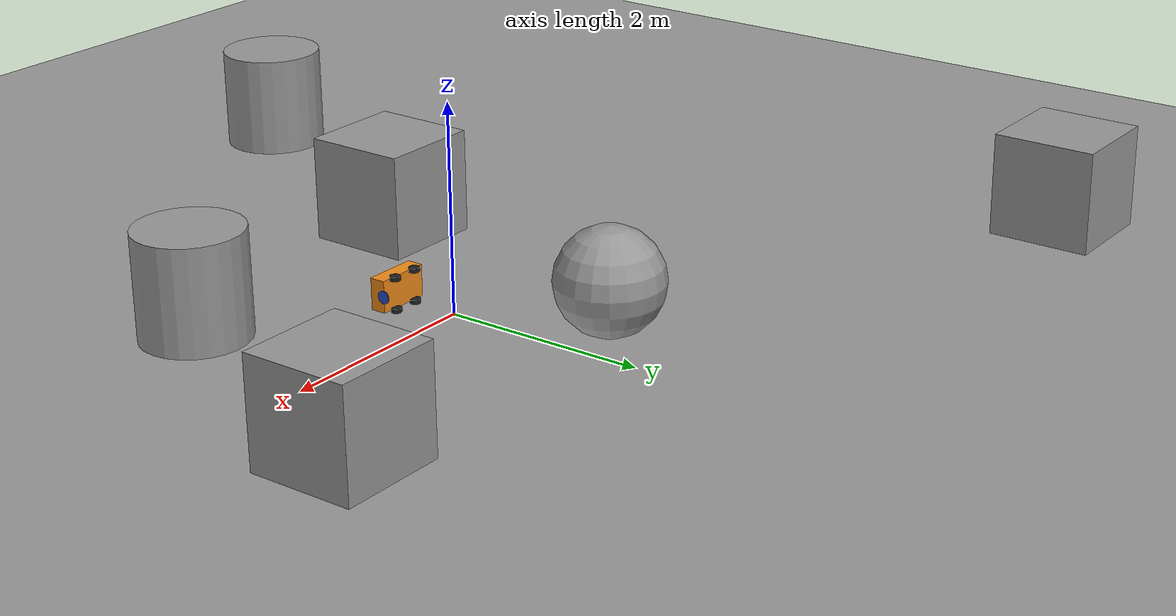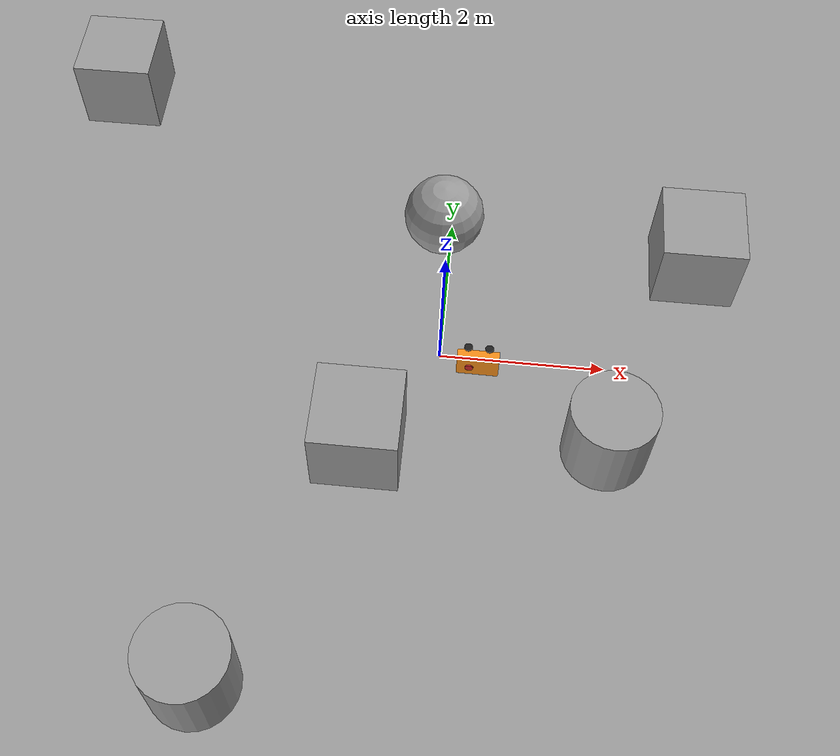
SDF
<sdf version="1.7">
 <world name="default">
  <light name="sun" type="directional">
   <pose>0 0 10 0 -0 0</pose>
   <diffuse>0.8 0.8 0.8 1</diffuse>
   <specular>0.2 0.2 0.2 1</specular>
   <attenuation>
    <range>1000</range>
    <constant>0.9</constant>
    <linear>0.01</linear>
    <quadratic>0.001</quadratic>
   </attenuation>
   <direction>-0.5 0.1 -0.9</direction>
   <spot><inner_angle>0</inner_angle><outer_angle>0</outer_angle><falloff>0</falloff></spot>
  </light>
  <model name="ground_plane">
   <static>1</static>
   <link name="link">
    <collision name="collision">
     <geometry><plane><normal>0 0 1</normal><size>100 100</size></plane></geometry>
     <surface>
      <contact><collide_bitmask>65535</collide_bitmask></contact>
      <friction><ode><mu>100</mu><mu2>50</mu2></ode></friction>
     </surface>
    </collision>
    <visual name="visual">
     <cast_shadows>0</cast_shadows>
     <geometry><plane><normal>0 0 1</normal><size>100 100</size></plane></geometry>
     <material>
      <script><uri>file://media/materials/scripts/gazebo.material</uri><name>Gazebo/Grey</name></script>
     </material>
    </visual>
   </link>
  </model>
  <gravity>0 0 -9.8</gravity>
  <magnetic_field>6e-06 2.3e-05 -4.2e-05</magnetic_field>
  <atmosphere type="adiabatic"/>
  <physics type="ode">
   <max_step_size>0.001</max_step_size>
   <real_time_factor>1</real_time_factor>
   <real_time_update_rate>1000</real_time_update_rate>
  </physics>
  <scene><ambient>0.4 0.4 0.4 1</ambient><background>0.7 0.7 0.7 1</background><shadows>1</shadows></scene>
  <audio><device>default</device></audio>
  <spherical_coordinates>
   <surface_model>EARTH_WGS84</surface_model>
   <latitude_deg>0</latitude_deg>
   <longitude_deg>0</longitude_deg>
   <elevation>0</elevation>
   <heading_deg>0</heading_deg>
  </spherical_coordinates>
  <model name="pynqcar">
   <link name="base_link">
    <inertial>
     <pose>0.021429 0 0.1 0 -0 0</pose>
     <mass>0.7</mass>
     <inertia>
      <ixx>0.00592333</ixx>
      <ixy>0</ixy>
      <ixz>0.00245</ixz>
      <iyy>0.0194294</iyy>
      <iyz>0</iyz>
      <izz>0.0213111</izz>
     </inertia>
    </inertial>
    <collision name="base_link_fixed_joint_lump__cat_head_link_collision">
     <pose>0.25 0 0.03 3.14159 1.57079 3.14159</pose>
     <geometry><cylinder><length>0.01</length><radius>0.06</radius></cylinder></geometry>
    </collision>
    <collision name="base_link_fixed_joint_lump__chassis_collision_1">
     <pose>0 0 0.1 0 -0 0</pose>
     <geometry><box><size>0.5 0.3 0.15</size></box></geometry>
    </collision>
    <collision name="base_link_fixed_joint_lump__laser_frame_collision_2">
     <pose>-0.1 0 0.17 0 -0 0</pose>
     <geometry><cylinder><length>0.04</length><radius>0.05</radius></cylinder></geometry>
    </collision>
    <visual name="base_link_fixed_joint_lump__cat_head_link_visual">
     <pose>0.25 0 0.03 3.14159 1.57079 3.14159</pose>
     <geometry><cylinder><length>0.01</length><radius>0.06</radius></cylinder></geometry>
     <material>
      <script><name>Gazebo/Blue</name><uri>file://media/materials/scripts/gazebo.material</uri></script>
     </material>
    </visual>
    <visual name="base_link_fixed_joint_lump__chassis_visual_1">
     <pose>0 0 0.1 0 -0 0</pose>
     <geometry><box><size>0.5 0.3 0.15</size></box></geometry>
     <material>
      <script><name>Gazebo/Orange</name><uri>file://media/materials/scripts/gazebo.material</uri></script>
     </material>
    </visual>
    <visual name="base_link_fixed_joint_lump__laser_frame_visual_2">
     <pose>-0.1 0 0.17 0 -0 0</pose>
     <geometry><cylinder><length>0.04</length><radius>0.05</radius></cylinder></geometry>
     <material>
      <script><name>Gazebo/Red</name><uri>file://media/materials/scripts/gazebo.material</uri></script>
     </material>
    </visual>
    <sensor name="laser" type="ray">
     <visualize>1</visualize>
     <update_rate>10</update_rate>
     <ray>
      <scan>
       <horizontal>
        <samples>360</samples>
        <min_angle>-3.14</min_angle>
        <max_angle>3.14</max_angle>
        <resolution>1</resolution>
       </horizontal>
       <vertical><samples>1</samples><min_angle>0</min_angle><max_angle>0</max_angle></vertical>
      </scan>
      <range><min>0.3</min><max>12</max></range>
     </ray>
     <plugin name="laser_controller" filename="libgazebo_ros_ray_sensor.so">
      <ros><argument>~/out:=scan</argument></ros>
      <output_type>sensor_msgs/LaserScan</output_type>
      <frame_name>laser_frame</frame_name>
     </plugin>
     <pose>-0.1 0 0.17 0 -0 0</pose>
    </sensor>
   </link>
   <joint name="left_back_wheel_joint" type="revolute">
    <pose relative_to="base_link">-0.125 0.15 0 0 -0 0</pose>
    <parent>base_link</parent>
    <child>left_back_wheel_link</child>
    <axis>
     <xyz>0 1 0</xyz>
     <limit><lower>-1e+16</lower><upper>1e+16</upper></limit>
     <dynamics><spring_reference>0</spring_reference><spring_stiffness>0</spring_stiffness></dynamics>
    </axis>
   </joint>
   <link name="left_back_wheel_link">
    <pose relative_to="left_back_wheel_joint">0 0 0 0 -0 0</pose>
    <inertial>
     <mass>0.6</mass>
     <inertia><ixx>0.0006</ixx><ixy>0</ixy><ixz>0</ixz><iyy>0.0006</iyy><iyz>0</iyz><izz>0.0006</izz></inertia>
    </inertial>
    <collision name="left_back_wheel_link_collision">
     <pose>0 0 0 1.5708 -0 0</pose>
     <geometry><cylinder><length>0.04</length><radius>0.05</radius></cylinder></geometry>
     <surface><friction><ode><mu>0.01</mu><mu2>0.01</mu2></ode></friction></surface>
    </collision>
    <visual name="left_back_wheel_link_visual">
     <pose>0 0 0 1.5708 -0 0</pose>
     <geometry><cylinder><length>0.04</length><radius>0.05</radius></cylinder></geometry>
     <material>
      <ambient>0.1764 0.4588 0.8509 1</ambient>
      <diffuse>0.1764 0.4588 0.8509 1</diffuse>
      <specular>0.1764 0.4588 0.8509 1</specular>
      <emissive>0 0 0 0</emissive>
      <script><name>Gazebo/Black</name><uri>file://media/materials/scripts/gazebo.material</uri></script>
     </material>
    </visual>
   </link>
   <joint name="left_front_wheel_joint" type="revolute">
    <pose relative_to="base_link">0.125 0.15 0 0 -0 0</pose>
    <parent>base_link</parent>
    <child>left_front_wheel_link</child>
    <axis>
     <xyz>0 1 0</xyz>
     <limit><lower>-1e+16</lower><upper>1e+16</upper></limit>
     <dynamics><spring_reference>0</spring_reference><spring_stiffness>0</spring_stiffness></dynamics>
    </axis>
   </joint>
   <link name="left_front_wheel_link">
    <pose relative_to="left_front_wheel_joint">0 0 0 0 -0 0</pose>
    <inertial>
     <mass>0.6</mass>
     <inertia><ixx>0.0006</ixx><ixy>0</ixy><ixz>0</ixz><iyy>0.0006</iyy><iyz>0</iyz><izz>0.0006</izz></inertia>
    </inertial>
    <collision name="left_front_wheel_link_collision">
     <pose>0 0 0 1.5708 -0 0</pose>
     <geometry><cylinder><length>0.04</length><radius>0.05</radius></cylinder></geometry>
     <surface><friction><ode><mu>0.01</mu><mu2>0.01</mu2></ode></friction></surface>
    </collision>
    <visual name="left_front_wheel_link_visual">
     <pose>0 0 0 1.5708 -0 0</pose>
     <geometry><cylinder><length>0.04</length><radius>0.05</radius></cylinder></geometry>
     <material>
      <ambient>0.1764 0.4588 0.8509 1</ambient>
      <diffuse>0.1764 0.4588 0.8509 1</diffuse>
      <specular>0.1764 0.4588 0.8509 1</specular>
      <emissive>0 0 0 0</emissive>
      <script><name>Gazebo/Black</name><uri>file://media/materials/scripts/gazebo.material</uri></script>
     </material>
    </visual>
   </link>
   <joint name="right_back_wheel_joint" type="revolute">
    <pose relative_to="base_link">-0.125 -0.15 0 0 -0 0</pose>
    <parent>base_link</parent>
    <child>right_back_wheel_link</child>
    <axis>
     <xyz>0 1 0</xyz>
     <limit><lower>-1e+16</lower><upper>1e+16</upper></limit>
     <dynamics><spring_reference>0</spring_reference><spring_stiffness>0</spring_stiffness></dynamics>
    </axis>
   </joint>
   <link name="right_back_wheel_link">
    <pose relative_to="right_back_wheel_joint">0 0 0 0 -0 0</pose>
    <inertial>
     <mass>0.6</mass>
     <inertia><ixx>0.0006</ixx><ixy>0</ixy><ixz>0</ixz><iyy>0.0006</iyy><iyz>0</iyz><izz>0.0006</izz></inertia>
    </inertial>
    <collision name="right_back_wheel_link_collision">
     <pose>0 0 0 1.5708 -0 0</pose>
     <geometry><cylinder><length>0.04</length><radius>0.05</radius></cylinder></geometry>
     <surface><friction><ode><mu>0.01</mu><mu2>0.01</mu2></ode></friction></surface>
    </collision>
    <visual name="right_back_wheel_link_visual">
     <pose>0 0 0 1.5708 -0 0</pose>
     <geometry><cylinder><length>0.04</length><radius>0.05</radius></cylinder></geometry>
     <material>
      <ambient>0.1764 0.4588 0.8509 1</ambient>
      <diffuse>0.1764 0.4588 0.8509 1</diffuse>
      <specular>0.1764 0.4588 0.8509 1</specular>
      <emissive>0 0 0 0</emissive>
      <script><name>Gazebo/Black</name><uri>file://media/materials/scripts/gazebo.material</uri></script>
     </material>
    </visual>
   </link>
   <joint name="right_front_wheel_joint" type="revolute">
    <pose relative_to="base_link">0.125 -0.15 0 0 -0 0</pose>
    <parent>base_link</parent>
    <child>right_front_wheel_link</child>
    <axis>
     <xyz>0 1 0</xyz>
     <limit><lower>-1e+16</lower><upper>1e+16</upper></limit>
     <dynamics><spring_reference>0</spring_reference><spring_stiffness>0</spring_stiffness></dynamics>
    </axis>
   </joint>
   <link name="right_front_wheel_link">
    <pose relative_to="right_front_wheel_joint">0 0 0 0 -0 0</pose>
    <inertial>
     <mass>0.6</mass>
     <inertia><ixx>0.0006</ixx><ixy>0</ixy><ixz>0</ixz><iyy>0.0006</iyy><iyz>0</iyz><izz>0.0006</izz></inertia>
    </inertial>
    <collision name="right_front_wheel_link_collision">
     <pose>0 0 0 1.5708 -0 0</pose>
     <geometry><cylinder><length>0.04</length><radius>0.05</radius></cylinder></geometry>
     <surface><friction><ode><mu>0.01</mu><mu2>0.01</mu2></ode></friction></surface>
    </collision>
    <visual name="right_front_wheel_link_visual">
     <pose>0 0 0 1.5708 -0 0</pose>
     <geometry><cylinder><length>0.04</length><radius>0.05</radius></cylinder></geometry>
     <material>
      <ambient>0.1764 0.4588 0.8509 1</ambient>
      <diffuse>0.1764 0.4588 0.8509 1</diffuse>
      <specular>0.1764 0.4588 0.8509 1</specular>
      <emissive>0 0 0 0</emissive>
      <script><name>Gazebo/Black</name><uri>file://media/materials/scripts/gazebo.material</uri></script>
     </material>
    </visual>
   </link>
   <static>0</static>
   <plugin name="wheel_drive" filename="libgazebo_ros_planar_move.so">
    <commandTopic>cmd_vel</commandTopic>
    <odometryTopic>odom</odometryTopic>
    <odometryFrame>odom</odometryFrame>
    <odometryRate>50.0</odometryRate>
    <robotBaseFram>base_link</robotBaseFram>
   </plugin>
   <pose>0.462556 -0.165543 0.3598 1.57095 -4e-06 -0.00915</pose>
  </model>
  <model name="ground_plane_0">
   <static>1</static>
   <link name="link">
    <collision name="collision">
     <geometry><plane><normal>0 0 1</normal><size>100 100</size></plane></geometry>
     <surface>
      <contact><collide_bitmask>65535</collide_bitmask></contact>
      <friction><ode><mu>100</mu><mu2>50</mu2></ode></friction>
     </surface>
    </collision>
    <visual name="visual">
     <cast_shadows>0</cast_shadows>
     <geometry><plane><normal>0 0 1</normal><size>100 100</size></plane></geometry>
     <material>
      <script><uri>file://media/materials/scripts/gazebo.material</uri><name>Gazebo/Grey</name></script>
     </material>
    </visual>
   </link>
   <pose>-0.741769 1.368 0 0 -0 0</pose>
  </model>
  <model name="unit_cylinder">
   <pose>1.98067 -1.21651 0.6898 0 -0 1.6e-05</pose>
   <link name="link">
    <inertial>
     <mass>1</mass>
     <inertia><ixx>0.145833</ixx><ixy>0</ixy><ixz>0</ixz><iyy>0.145833</iyy><iyz>0</iyz><izz>0.125</izz></inertia>
    </inertial>
    <collision name="collision">
     <geometry><cylinder><radius>0.5</radius><length>1</length></cylinder></geometry>
    </collision>
    <visual name="visual">
     <geometry><cylinder><radius>0.5</radius><length>1</length></cylinder></geometry>
     <material>
      <script><name>Gazebo/Grey</name><uri>file://media/materials/scripts/gazebo.material</uri></script>
     </material>
    </visual>
   </link>
  </model>
  <model name="unit_box">
   <pose>-0.826912 -1.44795 0.6898 -0 -0 -0</pose>
   <link name="link">
    <inertial>
     <mass>1</mass>
     <inertia>
      <ixx>0.166667</ixx>
      <ixy>0</ixy>
      <ixz>0</ixz>
      <iyy>0.166667</iyy>
      <iyz>0</iyz>
      <izz>0.166667</izz>
     </inertia>
    </inertial>
    <collision name="collision"><geometry><box><size>1 1 1</size></box></geometry></collision>
    <visual name="visual">
     <geometry><box><size>1 1 1</size></box></geometry>
     <material>
      <script><name>Gazebo/Grey</name><uri>file://media/materials/scripts/gazebo.material</uri></script>
     </material>
    </visual>
   </link>
  </model>
  <model name="unit_box_0">
   <pose>3.03781 1.46487 0.6898 -0 -0 -0</pose>
   <link name="link">
    <inertial>
     <mass>1</mass>
     <inertia>
      <ixx>0.166667</ixx>
      <ixy>0</ixy>
      <ixz>0</ixz>
      <iyy>0.166667</iyy>
      <iyz>0</iyz>
      <izz>0.166667</izz>
     </inertia>
    </inertial>
    <collision name="collision"><geometry><box><size>1 1 1</size></box></geometry></collision>
    <visual name="visual">
     <geometry><box><size>1 1 1</size></box></geometry>
     <material>
      <script><name>Gazebo/Grey</name><uri>file://media/materials/scripts/gazebo.material</uri></script>
     </material>
    </visual>
   </link>
  </model>
  <model name="unit_sphere">
   <pose>-0.101594 1.66237 0.6898 0 -0 0</pose>
   <link name="link">
    <inertial>
     <mass>1</mass>
     <inertia><ixx>0.1</ixx><ixy>0</ixy><ixz>0</ixz><iyy>0.1</iyy><iyz>0</iyz><izz>0.1</izz></inertia>
    </inertial>
    <collision name="collision"><geometry><sphere><radius>0.5</radius></sphere></geometry></collision>
    <visual name="visual">
     <geometry><sphere><radius>0.5</radius></sphere></geometry>
     <material>
      <script><name>Gazebo/Grey</name><uri>file://media/materials/scripts/gazebo.material</uri></script>
     </material>
    </visual>
   </link>
  </model>
  <model name="unit_cylinder_0">
   <pose>-2.19759 -4.31696 0.6898 0 -0 -1.5e-05</pose>
   <link name="link">
    <inertial>
     <mass>1</mass>
     <inertia><ixx>0.145833</ixx><ixy>0</ixy><ixz>0</ixz><iyy>0.145833</iyy><iyz>0</iyz><izz>0.125</izz></inertia>
    </inertial>
    <collision name="collision">
     <geometry><cylinder><radius>0.5</radius><length>1</length></cylinder></geometry>
    </collision>
    <visual name="visual">
     <geometry><cylinder><radius>0.5</radius><length>1</length></cylinder></geometry>
     <material>
      <script><name>Gazebo/Grey</name><uri>file://media/materials/scripts/gazebo.material</uri></script>
     </material>
    </visual>
   </link>
  </model>
  <model name="unit_box_1">
   <pose>-4.63985 3.70652 0.6898 -0 -0 -0</pose>
   <link name="link">
    <inertial>
     <mass>1</mass>
     <inertia>
      <ixx>0.166667</ixx>
      <ixy>0</ixy>
      <ixz>0</ixz>
      <iyy>0.166667</iyy>
      <iyz>0</iyz>
      <izz>0.166667</izz>
     </inertia>
    </inertial>
    <collision name="collision"><geometry><box><size>1 1 1</size></box></geometry></collision>
    <visual name="visual">
     <geometry><box><size>1 1 1</size></box></geometry>
     <material>
      <script><name>Gazebo/Grey</name><uri>file://media/materials/scripts/gazebo.material</uri></script>
     </material>
    </visual>
   </link>
  </model>
 </world>
</sdf>
